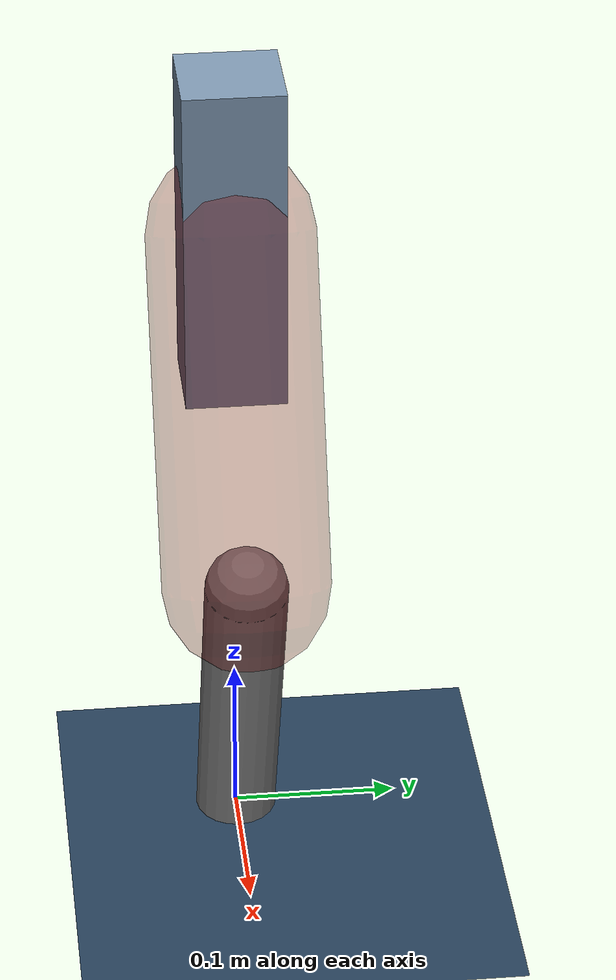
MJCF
<mujoco model="Hopper2D">
	<compiler inertiafromgeom="true" angle="radian" />
	<option timestep="0.001" integrator="implicit" cone="elliptic" solver="Newton" tolerance="1e-10" />

	<default>
		<geom contype="1" conaffinity="1" condim="3" friction="2 0.005 0.0001" solref="0.005 1" />
		<joint limited="true" damping="0.1" />
	</default>

	<asset>
		<texture name="skybox" type="skybox" builtin="gradient" rgb1=".4 .6 .8" rgb2="0 0 0" width="800" height="800" />
		<texture name="grid" type="2d" builtin="checker" rgb1=".1 .2 .3" rgb2=".2 .3 .4" width="300" height="300" mark="edge" markrgb=".2 .3 .4" />
		<material name="ground" texture="grid" texrepeat="1 1" texuniform="true" reflectance="0.1" />
		<material name="leg" rgba="0.5 0.6 0.7 1" />
	</asset>

	<worldbody>

		<geom name="floor" type="plane" size="5 5 0.25" material="ground" />

		<light directional="false" diffuse="0.8 0.8 0.8" specular="0.3 0.3 0.3" pos="0 0 2" dir="0 0 -1" />
		<light mode="targetbodycom" target="base" directional="false" diffuse="0.8 0.8 0.8" specular="0.3 0.3 0.3" pos="0 0 2" dir="0 0 -1" />

		<camera name="fixed" pos="0 -2 1" xyaxes="1 0 0 0 0 1" />
		<camera name="tracking" mode="trackcom" pos="0 -3 1" />

		<body name="root" pos="0 0 0.4064454929409821">
			<joint name="slide_x" type="slide" axis="1 0 0" range="-100 100" />
			<joint name="slide_z" type="slide" axis="0 0 1" range="0 10" />

			<body name="base" pos="0 0 0">
				<geom name="torso" type="box" size="0.03 0.03 0.1" mass="2.896" material="leg" />

				<body name="link1" pos="0 0 0" euler="0 1.145135444115216 0">
					<joint type="hinge" axis="0 -1 0" pos="0 0 0" name="hinge1" limited="true" range="-3.14 3.14" stiffness="0" damping="0.1" />
					<geom name="thigh" type="capsule" fromto="0 0 0 0.209168138119289 0 0" size="0.05" rgba="0.5 0 0 0.3" mass="0.7524203452982225" />

					<body name="link2" pos="0.209168138119289 0 0" euler="0 0.8061408587488624 0">
						<joint type="hinge" axis="0 -1 0" pos="0 0 0" name="hinge2" limited="true" range="-3.14 3.14" stiffness="0" damping="0.1" />
						<geom name="shank" type="capsule" fromto="0 0 0 0.23257447194394648 0 0" size="0.025" mass="0.4281170247495518" />

					</body>
				</body>
			</body>
		</body>
	</worldbody>

	<actuator>
		<motor name="torque1" joint="hinge1" ctrlrange="-76.59867925916177 76.59867925916177" ctrllimited="true" gear="1" />
		<motor name="torque2" joint="hinge2" ctrlrange="-32.095358247230195 32.095358247230195" ctrllimited="true" gear="1" />
	</actuator>
</mujoco>
